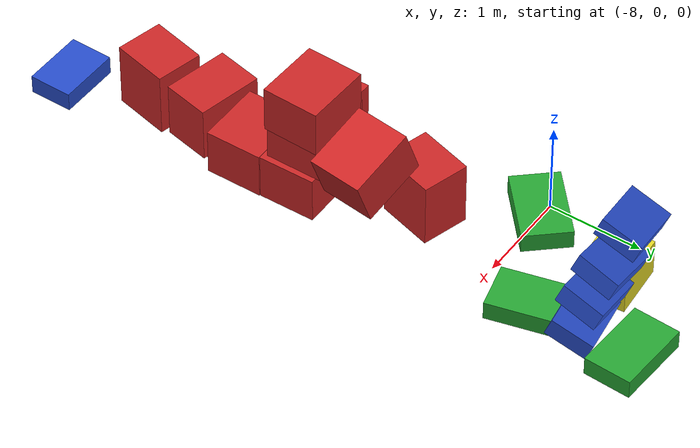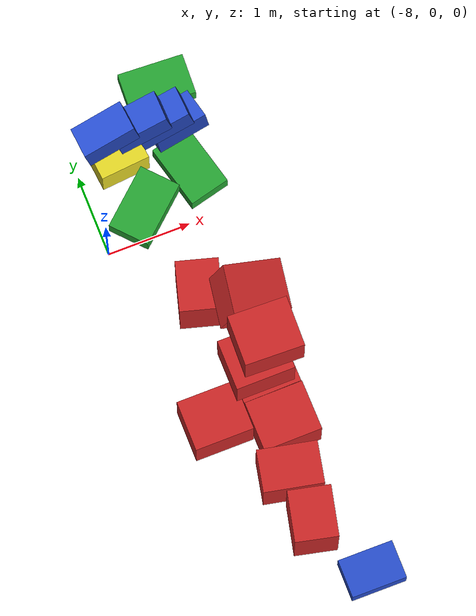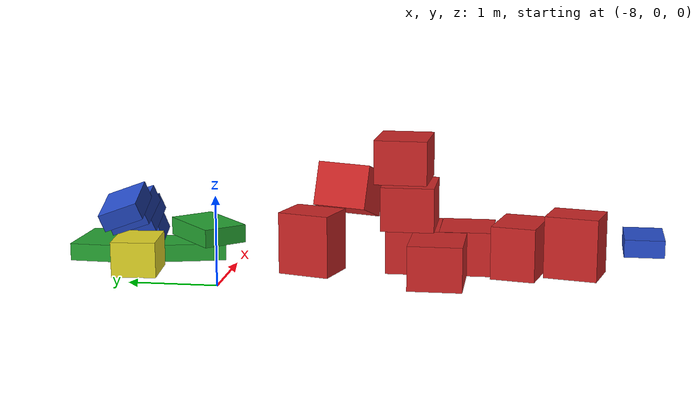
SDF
<sdf version="1.6">
 <world name="default">
  <model name="baggage_B_clone_2">
   <static>0</static>
   <link name="link">
    <collision name="collision"><geometry><box><size>0.65 0.45 0.2</size></box></geometry></collision>
    <visual name="visual">
     <geometry><box><size>0.65 0.45 0.2</size></box></geometry>
     <material>
      <script><uri>file://media/materials/scripts/gazebo.material</uri><name>Gazebo/Blue</name></script>
     </material>
    </visual>
    <inertial>
     <inertia><ixx>1</ixx><ixy>0</ixy><ixz>0</ixz><iyy>1</iyy><iyz>0</iyz><izz>1</izz></inertia>
     <mass>1</mass>
    </inertial>
   </link>
   <pose>-6.62387 -4.64102 0.29982 1.5e-05 7e-06 -0.012189</pose>
  </model>
  <model name="baggage_C_clone">
   <static>0</static>
   <link name="link">
    <collision name="collision"><geometry><box><size>0.6 0.5 0.4</size></box></geometry></collision>
    <visual name="visual">
     <geometry><box><size>0.6 0.5 0.4</size></box></geometry>
     <material>
      <script><uri>file://media/materials/scripts/gazebo.material</uri><name>Gazebo/Yellow</name></script>
     </material>
    </visual>
    <inertial>
     <inertia><ixx>1</ixx><ixy>0</ixy><ixz>0</ixz><iyy>1</iyy><iyz>0</iyz><izz>1</izz></inertia>
     <mass>1</mass>
    </inertial>
   </link>
   <pose>-7.49956 1.03327 0.199506 -3.14152 -7e-06 -3.05208</pose>
  </model>
  <model name="baggage_A_clone">
   <static>0</static>
   <link name="link">
    <collision name="collision"><geometry><box><size>0.7 0.6 0.5</size></box></geometry></collision>
    <visual name="visual">
     <geometry><box><size>0.7 0.6 0.5</size></box></geometry>
     <material>
      <script><uri>file://media/materials/scripts/gazebo.material</uri><name>Gazebo/Red</name></script>
     </material>
    </visual>
    <inertial>
     <inertia><ixx>1</ixx><ixy>0</ixy><ixz>0</ixz><iyy>1</iyy><iyz>0</iyz><izz>1</izz></inertia>
     <mass>1</mass>
    </inertial>
   </link>
   <pose>-6.89891 -2.65548 0.249999 0 3e-06 0.003736</pose>
  </model>
  <model name="baggage_A_clone_1">
   <static>0</static>
   <link name="link">
    <collision name="collision"><geometry><box><size>0.7 0.6 0.5</size></box></geometry></collision>
    <visual name="visual">
     <geometry><box><size>0.7 0.6 0.5</size></box></geometry>
     <material>
      <script><uri>file://media/materials/scripts/gazebo.material</uri><name>Gazebo/Red</name></script>
     </material>
    </visual>
    <inertial>
     <inertia><ixx>1</ixx><ixy>0</ixy><ixz>0</ixz><iyy>1</iyy><iyz>0</iyz><izz>1</izz></inertia>
     <mass>1</mass>
    </inertial>
   </link>
   <pose>-7.05431 -3.25438 0.299994 1.5708 1e-06 -0.212895</pose>
  </model>
  <model name="baggage_A_clone_2">
   <static>0</static>
   <link name="link">
    <collision name="collision"><geometry><box><size>0.7 0.6 0.5</size></box></geometry></collision>
    <visual name="visual">
     <geometry><box><size>0.7 0.6 0.5</size></box></geometry>
     <material>
      <script><uri>file://media/materials/scripts/gazebo.material</uri><name>Gazebo/Red</name></script>
     </material>
    </visual>
    <inertial>
     <inertia><ixx>1</ixx><ixy>0</ixy><ixz>0</ixz><iyy>1</iyy><iyz>0</iyz><izz>1</izz></inertia>
     <mass>1</mass>
    </inertial>
   </link>
   <pose>-7.23767 -0.923609 0.35 0.687213 -1.57079 -0.970433</pose>
  </model>
  <model name="baggage_A_clone_4">
   <static>0</static>
   <link name="link">
    <collision name="collision"><geometry><box><size>0.7 0.6 0.5</size></box></geometry></collision>
    <visual name="visual">
     <geometry><box><size>0.7 0.6 0.5</size></box></geometry>
     <material>
      <script><uri>file://media/materials/scripts/gazebo.material</uri><name>Gazebo/Red</name></script>
     </material>
    </visual>
    <inertial>
     <inertia><ixx>1</ixx><ixy>0</ixy><ixz>0</ixz><iyy>1</iyy><iyz>0</iyz><izz>1</izz></inertia>
     <mass>1</mass>
    </inertial>
   </link>
   <pose>-7.03228 -3.86913 0.349999 2.53827 -1.57079 -2.7699</pose>
  </model>
  <model name="baggage_A_clone_8">
   <static>0</static>
   <link name="link">
    <collision name="collision"><geometry><box><size>0.7 0.6 0.5</size></box></geometry></collision>
    <visual name="visual">
     <geometry><box><size>0.7 0.6 0.5</size></box></geometry>
     <material>
      <script><uri>file://media/materials/scripts/gazebo.material</uri><name>Gazebo/Red</name></script>
     </material>
    </visual>
    <inertial>
     <inertia><ixx>1</ixx><ixy>0</ixy><ixz>0</ixz><iyy>1</iyy><iyz>0</iyz><izz>1</izz></inertia>
     <mass>1</mass>
    </inertial>
   </link>
   <pose>-6.75233 -1.28046 0.85781 0.045005 0.320586 -0.141043</pose>
  </model>
  <model name="baggage_A_clone_11">
   <static>0</static>
   <link name="link">
    <collision name="collision"><geometry><box><size>0.7 0.6 0.5</size></box></geometry></collision>
    <visual name="visual">
     <geometry><box><size>0.7 0.6 0.5</size></box></geometry>
     <material>
      <script><uri>file://media/materials/scripts/gazebo.material</uri><name>Gazebo/Red</name></script>
     </material>
    </visual>
    <inertial>
     <inertia><ixx>1</ixx><ixy>0</ixy><ixz>0</ixz><iyy>1</iyy><iyz>0</iyz><izz>1</izz></inertia>
     <mass>1</mass>
    </inertial>
   </link>
   <pose>-6.82463 -1.92187 1.24996 -5e-06 6e-05 -0.034321</pose>
  </model>
  <model name="baggage_A_clone_12">
   <static>0</static>
   <link name="link">
    <collision name="collision"><geometry><box><size>0.7 0.6 0.5</size></box></geometry></collision>
    <visual name="visual">
     <geometry><box><size>0.7 0.6 0.5</size></box></geometry>
     <material>
      <script><uri>file://media/materials/scripts/gazebo.material</uri><name>Gazebo/Red</name></script>
     </material>
    </visual>
    <inertial>
     <inertia><ixx>1</ixx><ixy>0</ixy><ixz>0</ixz><iyy>1</iyy><iyz>0</iyz><izz>1</izz></inertia>
     <mass>1</mass>
    </inertial>
   </link>
   <pose>-6.9106 -2.05292 0.249973 -2e-06 5e-06 0.011337</pose>
  </model>
  <model name="baggage_A_clone_13">
   <static>0</static>
   <link name="link">
    <collision name="collision"><geometry><box><size>0.7 0.6 0.5</size></box></geometry></collision>
    <visual name="visual">
     <geometry><box><size>0.7 0.6 0.5</size></box></geometry>
     <material>
      <script><uri>file://media/materials/scripts/gazebo.material</uri><name>Gazebo/Red</name></script>
     </material>
    </visual>
    <inertial>
     <inertia><ixx>1</ixx><ixy>0</ixy><ixz>0</ixz><iyy>1</iyy><iyz>0</iyz><izz>1</izz></inertia>
     <mass>1</mass>
    </inertial>
   </link>
   <pose>-6.97197 -2.00554 0.749974 -2e-06 8e-06 -0.00131</pose>
  </model>
  <model name="baggage_A_clone_14">
   <static>0</static>
   <link name="link">
    <collision name="collision"><geometry><box><size>0.7 0.6 0.5</size></box></geometry></collision>
    <visual name="visual">
     <geometry><box><size>0.7 0.6 0.5</size></box></geometry>
     <material>
      <script><uri>file://media/materials/scripts/gazebo.material</uri><name>Gazebo/Red</name></script>
     </material>
    </visual>
    <inertial>
     <inertia><ixx>1</ixx><ixy>0</ixy><ixz>0</ixz><iyy>1</iyy><iyz>0</iyz><izz>1</izz></inertia>
     <mass>1</mass>
    </inertial>
   </link>
   <pose>-7.61128 -2.36937 0.249982 -3e-06 -7e-06 -0.003856</pose>
  </model>
  <model name="baggage_D_clone_6">
   <static>0</static>
   <link name="link">
    <collision name="collision"><geometry><box><size>0.8 0.5 0.2</size></box></geometry></collision>
    <visual name="visual">
     <geometry><box><size>0.8 0.5 0.2</size></box></geometry>
     <material>
      <script><uri>file://media/materials/scripts/gazebo.material</uri><name>Gazebo/Green</name></script>
     </material>
    </visual>
    <inertial>
     <inertia><ixx>1</ixx><ixy>0</ixy><ixz>0</ixz><iyy>1</iyy><iyz>0</iyz><izz>1</izz></inertia>
     <mass>1</mass>
    </inertial>
   </link>
   <pose>-7.46138 0.220002 0.499798 -3.14155 2.2e-05 -2.41357</pose>
  </model>
  <model name="baggage_D_clone_47">
   <static>0</static>
   <link name="link">
    <collision name="collision"><geometry><box><size>0.8 0.5 0.2</size></box></geometry></collision>
    <visual name="visual">
     <geometry><box><size>0.8 0.5 0.2</size></box></geometry>
     <material>
      <script><uri>file://media/materials/scripts/gazebo.material</uri><name>Gazebo/Green</name></script>
     </material>
    </visual>
    <inertial>
     <inertia><ixx>1</ixx><ixy>0</ixy><ixz>0</ixz><iyy>1</iyy><iyz>0</iyz><izz>1</izz></inertia>
     <mass>1</mass>
    </inertial>
   </link>
   <pose>-6.74564 1.68634 0.098908 -0.000306 -0.000402 -0.049364</pose>
  </model>
  <model name="baggage_D_clone_62">
   <static>0</static>
   <link name="link">
    <collision name="collision"><geometry><box><size>0.8 0.5 0.2</size></box></geometry></collision>
    <visual name="visual">
     <geometry><box><size>0.8 0.5 0.2</size></box></geometry>
     <material>
      <script><uri>file://media/materials/scripts/gazebo.material</uri><name>Gazebo/Green</name></script>
     </material>
    </visual>
    <inertial>
     <inertia><ixx>1</ixx><ixy>0</ixy><ixz>0</ixz><iyy>1</iyy><iyz>0</iyz><izz>1</izz></inertia>
     <mass>1</mass>
    </inertial>
   </link>
   <pose>-6.75381 0.604522 0.099727 3.14156 8.9e-05 1.81357</pose>
  </model>
  <model name="baggage_B_clone_56">
   <static>0</static>
   <link name="link">
    <collision name="collision"><geometry><box><size>0.65 0.45 0.2</size></box></geometry></collision>
    <visual name="visual">
     <geometry><box><size>0.65 0.45 0.2</size></box></geometry>
     <material>
      <script><uri>file://media/materials/scripts/gazebo.material</uri><name>Gazebo/Blue</name></script>
     </material>
    </visual>
    <inertial>
     <inertia><ixx>1</ixx><ixy>0</ixy><ixz>0</ixz><iyy>1</iyy><iyz>0</iyz><izz>1</izz></inertia>
     <mass>1</mass>
    </inertial>
   </link>
   <pose>-6.73276 1.1552 0.256108 -2.77206 0.031006 -2.97829</pose>
  </model>
  <model name="baggage_B_clone_76">
   <static>0</static>
   <link name="link">
    <collision name="collision"><geometry><box><size>0.65 0.45 0.2</size></box></geometry></collision>
    <visual name="visual">
     <geometry><box><size>0.65 0.45 0.2</size></box></geometry>
     <material>
      <script><uri>file://media/materials/scripts/gazebo.material</uri><name>Gazebo/Blue</name></script>
     </material>
    </visual>
    <inertial>
     <inertia><ixx>1</ixx><ixy>0</ixy><ixz>0</ixz><iyy>1</iyy><iyz>0</iyz><izz>1</izz></inertia>
     <mass>1</mass>
    </inertial>
   </link>
   <pose>-6.89263 1.17488 0.476571 -2.79142 0.211932 -3.0571</pose>
  </model>
  <model name="baggage_B_clone_77">
   <static>0</static>
   <link name="link">
    <collision name="collision"><geometry><box><size>0.65 0.45 0.2</size></box></geometry></collision>
    <visual name="visual">
     <geometry><box><size>0.65 0.45 0.2</size></box></geometry>
     <material>
      <script><uri>file://media/materials/scripts/gazebo.material</uri><name>Gazebo/Blue</name></script>
     </material>
    </visual>
    <inertial>
     <inertia><ixx>1</ixx><ixy>0</ixy><ixz>0</ixz><iyy>1</iyy><iyz>0</iyz><izz>1</izz></inertia>
     <mass>1</mass>
    </inertial>
   </link>
   <pose>-7.57951 1.13775 0.762664 -2.78574 0.183009 -3.02956</pose>
  </model>
  <model name="baggage_B_clone_78">
   <static>0</static>
   <link name="link">
    <collision name="collision"><geometry><box><size>0.65 0.45 0.2</size></box></geometry></collision>
    <visual name="visual">
     <geometry><box><size>0.65 0.45 0.2</size></box></geometry>
     <material>
      <script><uri>file://media/materials/scripts/gazebo.material</uri><name>Gazebo/Blue</name></script>
     </material>
    </visual>
    <inertial>
     <inertia><ixx>1</ixx><ixy>0</ixy><ixz>0</ixz><iyy>1</iyy><iyz>0</iyz><izz>1</izz></inertia>
     <mass>1</mass>
    </inertial>
   </link>
   <pose>-7.16555 1.16825 0.629585 -2.79656 0.22048 -3.08104</pose>
  </model>
 </world>
</sdf>
